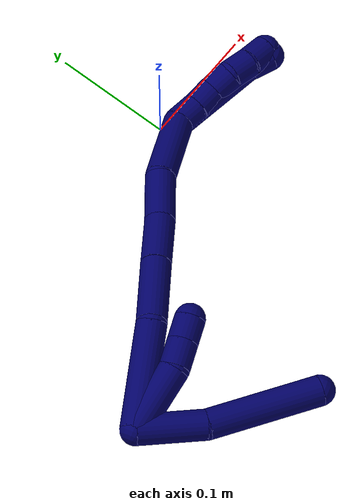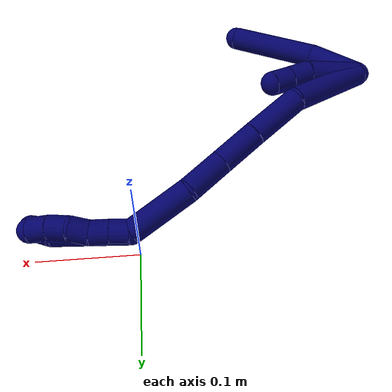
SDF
<sdf version="1.7">
 <world name="default">
  <model name="7">
   <static>0</static>
   <link name="7">
    <collision name="collision-cylinder-e_1_2_8">
     <pose>-0.011785 -0.021255 0.013803 0.994839 -0.435251 -0.238981</pose>
     <geometry><cylinder><radius>0.0125</radius><length>0.055899</length></cylinder></geometry>
     <surface>
      <friction><ode><mu>1.16</mu><mu2>1.16</mu2><slip1>0</slip1><slip2>0</slip2></ode></friction>
      <contact><ode><kp>1e+06</kp><kd>1</kd><max_vel>0</max_vel><min_depth>0.001</min_depth></ode></contact>
     </surface>
    </collision>
    <visual name="visual-cylinder-e_1_2_8">
     <pose>-0.011785 -0.021255 0.013803 0.994839 -0.435251 -0.238981</pose>
     <geometry><cylinder><radius>0.0125</radius><length>0.055899</length></cylinder></geometry>
     <material><ambient>0.003922 0 0.403922 1</ambient></material>
    </visual>
    <collision name="collision-cylinder-e_2_8_6">
     <pose>-0.037861 -0.074242 0.059269 0.786491 -0.30863 -0.128884</pose>
     <geometry><cylinder><radius>0.0125</radius><length>0.094101</length></cylinder></geometry>
     <surface>
      <friction><ode><mu>1.16</mu><mu2>1.16</mu2><slip1>0</slip1><slip2>0</slip2></ode></friction>
      <contact><ode><kp>1e+06</kp><kd>1</kd><max_vel>0</max_vel><min_depth>0.001</min_depth></ode></contact>
     </surface>
    </collision>
    <visual name="visual-cylinder-e_2_8_6">
     <pose>-0.037861 -0.074242 0.059269 0.786491 -0.30863 -0.128884</pose>
     <geometry><cylinder><radius>0.0125</radius><length>0.094101</length></cylinder></geometry>
     <material><ambient>0.003922 0 0.403922 1</ambient></material>
    </visual>
    <collision name="collision-cylinder-e_1_2_9">
     <pose>-0.002691 -0.00275 0.027999 0.097908 -0.095352 -0.004675</pose>
     <geometry><cylinder><radius>0.0125</radius><length>0.056524</length></cylinder></geometry>
     <surface>
      <friction><ode><mu>1.16</mu><mu2>1.16</mu2><slip1>0</slip1><slip2>0</slip2></ode></friction>
      <contact><ode><kp>1e+06</kp><kd>1</kd><max_vel>0</max_vel><min_depth>0.001</min_depth></ode></contact>
     </surface>
    </collision>
    <visual name="visual-cylinder-e_1_2_9">
     <pose>-0.002691 -0.00275 0.027999 0.097908 -0.095352 -0.004675</pose>
     <geometry><cylinder><radius>0.0125</radius><length>0.056524</length></cylinder></geometry>
     <material><ambient>0.003922 0 0.403922 1</ambient></material>
    </visual>
    <collision name="collision-cylinder-e_2_9_10">
     <pose>-0.003021 -0.005292 0.067208 -0.018527 0.207458 -0.001929</pose>
     <geometry><cylinder><radius>0.0125</radius><length>0.022917</length></cylinder></geometry>
     <surface>
      <friction><ode><mu>1.16</mu><mu2>1.16</mu2><slip1>0</slip1><slip2>0</slip2></ode></friction>
      <contact><ode><kp>1e+06</kp><kd>1</kd><max_vel>0</max_vel><min_depth>0.001</min_depth></ode></contact>
     </surface>
    </collision>
    <visual name="visual-cylinder-e_2_9_10">
     <pose>-0.003021 -0.005292 0.067208 -0.018527 0.207458 -0.001929</pose>
     <geometry><cylinder><radius>0.0125</radius><length>0.022917</length></cylinder></geometry>
     <material><ambient>0.003922 0 0.403922 1</ambient></material>
    </visual>
    <collision name="collision-cylinder-e_3_10_5">
     <pose>0.001179 -0.004737 0.088527 -0.034393 0.179936 -0.003103</pose>
     <geometry><cylinder><radius>0.0125</radius><length>0.020559</length></cylinder></geometry>
     <surface>
      <friction><ode><mu>1.16</mu><mu2>1.16</mu2><slip1>0</slip1><slip2>0</slip2></ode></friction>
      <contact><ode><kp>1e+06</kp><kd>1</kd><max_vel>0</max_vel><min_depth>0.001</min_depth></ode></contact>
     </surface>
    </collision>
    <visual name="visual-cylinder-e_3_10_5">
     <pose>0.001179 -0.004737 0.088527 -0.034393 0.179936 -0.003103</pose>
     <geometry><cylinder><radius>0.0125</radius><length>0.020559</length></cylinder></geometry>
     <material><ambient>0.003922 0 0.403922 1</ambient></material>
    </visual>
    <collision name="collision-cylinder-e_1_2_11">
     <pose>0.010281 0.007621 0.04185 -0.18013 0.237134 -0.021516</pose>
     <geometry><cylinder><radius>0.0125</radius><length>0.087527</length></cylinder></geometry>
     <surface>
      <friction><ode><mu>1.16</mu><mu2>1.16</mu2><slip1>0</slip1><slip2>0</slip2></ode></friction>
      <contact><ode><kp>1e+06</kp><kd>1</kd><max_vel>0</max_vel><min_depth>0.001</min_depth></ode></contact>
     </surface>
    </collision>
    <visual name="visual-cylinder-e_1_2_11">
     <pose>0.010281 0.007621 0.04185 -0.18013 0.237134 -0.021516</pose>
     <geometry><cylinder><radius>0.0125</radius><length>0.087527</length></cylinder></geometry>
     <material><ambient>0.003922 0 0.403922 1</ambient></material>
    </visual>
    <collision name="collision-cylinder-e_2_11_12">
     <pose>0.035567 0.015985 0.108279 -0.030206 0.547905 -0.008489</pose>
     <geometry><cylinder><radius>0.0125</radius><length>0.057611</length></cylinder></geometry>
     <surface>
      <friction><ode><mu>1.16</mu><mu2>1.16</mu2><slip1>0</slip1><slip2>0</slip2></ode></friction>
      <contact><ode><kp>1e+06</kp><kd>1</kd><max_vel>0</max_vel><min_depth>0.001</min_depth></ode></contact>
     </surface>
    </collision>
    <visual name="visual-cylinder-e_2_11_12">
     <pose>0.035567 0.015985 0.108279 -0.030206 0.547905 -0.008489</pose>
     <geometry><cylinder><radius>0.0125</radius><length>0.057611</length></cylinder></geometry>
     <material><ambient>0.003922 0 0.403922 1</ambient></material>
    </visual>
    <collision name="collision-cylinder-e_3_12_13">
     <pose>0.062631 0.016488 0.151437 0.012871 0.575655 0.00381</pose>
     <geometry><cylinder><radius>0.0125</radius><length>0.044305</length></cylinder></geometry>
     <surface>
      <friction><ode><mu>1.16</mu><mu2>1.16</mu2><slip1>0</slip1><slip2>0</slip2></ode></friction>
      <contact><ode><kp>1e+06</kp><kd>1</kd><max_vel>0</max_vel><min_depth>0.001</min_depth></ode></contact>
     </surface>
    </collision>
    <visual name="visual-cylinder-e_3_12_13">
     <pose>0.062631 0.016488 0.151437 0.012871 0.575655 0.00381</pose>
     <geometry><cylinder><radius>0.0125</radius><length>0.044305</length></cylinder></geometry>
     <material><ambient>0.003922 0 0.403922 1</ambient></material>
    </visual>
    <collision name="collision-cylinder-e_4_13_14">
     <pose>0.085684 0.018398 0.188403 -0.116337 0.535948 -0.031977</pose>
     <geometry><cylinder><radius>0.0125</radius><length>0.043057</length></cylinder></geometry>
     <surface>
      <friction><ode><mu>1.16</mu><mu2>1.16</mu2><slip1>0</slip1><slip2>0</slip2></ode></friction>
      <contact><ode><kp>1e+06</kp><kd>1</kd><max_vel>0</max_vel><min_depth>0.001</min_depth></ode></contact>
     </surface>
    </collision>
    <visual name="visual-cylinder-e_4_13_14">
     <pose>0.085684 0.018398 0.188403 -0.116337 0.535948 -0.031977</pose>
     <geometry><cylinder><radius>0.0125</radius><length>0.043057</length></cylinder></geometry>
     <material><ambient>0.003922 0 0.403922 1</ambient></material>
    </visual>
    <collision name="collision-cylinder-e_5_14_1">
     <pose>0.114092 0.013965 0.234939 0.22966 0.542134 0.064084</pose>
     <geometry><cylinder><radius>0.0125</radius><length>0.067499</length></cylinder></geometry>
     <surface>
      <friction><ode><mu>1.16</mu><mu2>1.16</mu2><slip1>0</slip1><slip2>0</slip2></ode></friction>
      <contact><ode><kp>1e+06</kp><kd>1</kd><max_vel>0</max_vel><min_depth>0.001</min_depth></ode></contact>
     </surface>
    </collision>
    <visual name="visual-cylinder-e_5_14_1">
     <pose>0.114092 0.013965 0.234939 0.22966 0.542134 0.064084</pose>
     <geometry><cylinder><radius>0.0125</radius><length>0.067499</length></cylinder></geometry>
     <material><ambient>0.003922 0 0.403922 1</ambient></material>
    </visual>
    <collision name="collision-cylinder-e_1_1_15">
     <pose>0.130614 -0.010015 0.298135 0.460811 -0.022773 -0.005342</pose>
     <geometry><cylinder><radius>0.0125</radius><length>0.078272</length></cylinder></geometry>
     <surface>
      <friction><ode><mu>1.16</mu><mu2>1.16</mu2><slip1>0</slip1><slip2>0</slip2></ode></friction>
      <contact><ode><kp>1e+06</kp><kd>1</kd><max_vel>0</max_vel><min_depth>0.001</min_depth></ode></contact>
     </surface>
    </collision>
    <visual name="visual-cylinder-e_1_1_15">
     <pose>0.130614 -0.010015 0.298135 0.460811 -0.022773 -0.005342</pose>
     <geometry><cylinder><radius>0.0125</radius><length>0.078272</length></cylinder></geometry>
     <material><ambient>0.003922 0 0.403922 1</ambient></material>
    </visual>
    <collision name="collision-cylinder-e_2_15_4">
     <pose>0.126626 -0.033288 0.341778 0.599447 -0.289048 -0.089892</pose>
     <geometry><cylinder><radius>0.0125</radius><length>0.021728</length></cylinder></geometry>
     <surface>
      <friction><ode><mu>1.16</mu><mu2>1.16</mu2><slip1>0</slip1><slip2>0</slip2></ode></friction>
      <contact><ode><kp>1e+06</kp><kd>1</kd><max_vel>0</max_vel><min_depth>0.001</min_depth></ode></contact>
     </surface>
    </collision>
    <visual name="visual-cylinder-e_2_15_4">
     <pose>0.126626 -0.033288 0.341778 0.599447 -0.289048 -0.089892</pose>
     <geometry><cylinder><radius>0.0125</radius><length>0.021728</length></cylinder></geometry>
     <material><ambient>0.003922 0 0.403922 1</ambient></material>
    </visual>
    <collision name="collision-cylinder-e_1_1_16">
     <pose>0.130884 0.003294 0.272195 0.422138 -0.062121 -0.013314</pose>
     <geometry><cylinder><radius>0.0125</radius><length>0.02</length></cylinder></geometry>
     <surface>
      <friction><ode><mu>1.16</mu><mu2>1.16</mu2><slip1>0</slip1><slip2>0</slip2></ode></friction>
      <contact><ode><kp>1e+06</kp><kd>1</kd><max_vel>0</max_vel><min_depth>0.001</min_depth></ode></contact>
     </surface>
    </collision>
    <visual name="visual-cylinder-e_1_1_16">
     <pose>0.130884 0.003294 0.272195 0.422138 -0.062121 -0.013314</pose>
     <geometry><cylinder><radius>0.0125</radius><length>0.02</length></cylinder></geometry>
     <material><ambient>0.003922 0 0.403922 1</ambient></material>
    </visual>
    <collision name="collision-cylinder-e_2_16_17">
     <pose>0.129901 -0.004185 0.2907 0.34616 -0.036305 -0.006348</pose>
     <geometry><cylinder><radius>0.0125</radius><length>0.02</length></cylinder></geometry>
     <surface>
      <friction><ode><mu>1.16</mu><mu2>1.16</mu2><slip1>0</slip1><slip2>0</slip2></ode></friction>
      <contact><ode><kp>1e+06</kp><kd>1</kd><max_vel>0</max_vel><min_depth>0.001</min_depth></ode></contact>
     </surface>
    </collision>
    <visual name="visual-cylinder-e_2_16_17">
     <pose>0.129901 -0.004185 0.2907 0.34616 -0.036305 -0.006348</pose>
     <geometry><cylinder><radius>0.0125</radius><length>0.02</length></cylinder></geometry>
     <material><ambient>0.003922 0 0.403922 1</ambient></material>
    </visual>
    <collision name="collision-cylinder-e_3_17_18">
     <pose>0.12654 -0.010374 0.309221 0.297677 -0.30447 -0.046002</pose>
     <geometry><cylinder><radius>0.0125</radius><length>0.02</length></cylinder></geometry>
     <surface>
      <friction><ode><mu>1.16</mu><mu2>1.16</mu2><slip1>0</slip1><slip2>0</slip2></ode></friction>
      <contact><ode><kp>1e+06</kp><kd>1</kd><max_vel>0</max_vel><min_depth>0.001</min_depth></ode></contact>
     </surface>
    </collision>
    <visual name="visual-cylinder-e_3_17_18">
     <pose>0.12654 -0.010374 0.309221 0.297677 -0.30447 -0.046002</pose>
     <geometry><cylinder><radius>0.0125</radius><length>0.02</length></cylinder></geometry>
     <material><ambient>0.003922 0 0.403922 1</ambient></material>
    </visual>
    <collision name="collision-cylinder-e_4_18_19">
     <pose>0.122936 -0.0183 0.326906 0.539515 -0.06067 -0.01678</pose>
     <geometry><cylinder><radius>0.0125</radius><length>0.02</length></cylinder></geometry>
     <surface>
      <friction><ode><mu>1.16</mu><mu2>1.16</mu2><slip1>0</slip1><slip2>0</slip2></ode></friction>
      <contact><ode><kp>1e+06</kp><kd>1</kd><max_vel>0</max_vel><min_depth>0.001</min_depth></ode></contact>
     </surface>
    </collision>
    <visual name="visual-cylinder-e_4_18_19">
     <pose>0.122936 -0.0183 0.326906 0.539515 -0.06067 -0.01678</pose>
     <geometry><cylinder><radius>0.0125</radius><length>0.02</length></cylinder></geometry>
     <material><ambient>0.003922 0 0.403922 1</ambient></material>
    </visual>
    <collision name="collision-cylinder-e_5_19_3">
     <pose>0.123355 -0.028402 0.344084 0.523648 0.102782 0.027566</pose>
     <geometry><cylinder><radius>0.0125</radius><length>0.02</length></cylinder></geometry>
     <surface>
      <friction><ode><mu>1.16</mu><mu2>1.16</mu2><slip1>0</slip1><slip2>0</slip2></ode></friction>
      <contact><ode><kp>1e+06</kp><kd>1</kd><max_vel>0</max_vel><min_depth>0.001</min_depth></ode></contact>
     </surface>
    </collision>
    <visual name="visual-cylinder-e_5_19_3">
     <pose>0.123355 -0.028402 0.344084 0.523648 0.102782 0.027566</pose>
     <geometry><cylinder><radius>0.0125</radius><length>0.02</length></cylinder></geometry>
     <material><ambient>0.003922 0 0.403922 1</ambient></material>
    </visual>
    <collision name="collision-sphere-3">
     <pose>0.124381 -0.033376 0.352698 0 -0 0</pose>
     <geometry><sphere><radius>0.0125</radius></sphere></geometry>
     <surface>
      <friction><ode><mu>1.16</mu><mu2>1.16</mu2><slip1>0</slip1><slip2>0</slip2></ode></friction>
      <contact><ode><kp>1e+06</kp><kd>1</kd><max_vel>0</max_vel><min_depth>0.001</min_depth></ode></contact>
     </surface>
    </collision>
    <visual name="visual-sphere-3">
     <pose>0.124381 -0.033376 0.352698 0 -0 0</pose>
     <geometry><sphere><radius>0.0125</radius></sphere></geometry>
     <material><ambient>0.003922 0 0.403922 1</ambient></material>
    </visual>
    <collision name="collision-sphere-19">
     <pose>0.122329 -0.023428 0.335469 0 -0 0</pose>
     <geometry><sphere><radius>0.0125</radius></sphere></geometry>
     <surface>
      <friction><ode><mu>1.16</mu><mu2>1.16</mu2><slip1>0</slip1><slip2>0</slip2></ode></friction>
      <contact><ode><kp>1e+06</kp><kd>1</kd><max_vel>0</max_vel><min_depth>0.001</min_depth></ode></contact>
     </surface>
    </collision>
    <visual name="visual-sphere-19">
     <pose>0.122329 -0.023428 0.335469 0 -0 0</pose>
     <geometry><sphere><radius>0.0125</radius></sphere></geometry>
     <material><ambient>0.003922 0 0.403922 1</ambient></material>
    </visual>
    <collision name="collision-sphere-5">
     <pose>0.003018 -0.004389 0.098635 0 -0 0</pose>
     <geometry><sphere><radius>0.0125</radius></sphere></geometry>
     <surface>
      <friction><ode><mu>1.16</mu><mu2>1.16</mu2><slip1>0</slip1><slip2>0</slip2></ode></friction>
      <contact><ode><kp>1e+06</kp><kd>1</kd><max_vel>0</max_vel><min_depth>0.001</min_depth></ode></contact>
     </surface>
    </collision>
    <visual name="visual-sphere-5">
     <pose>0.003018 -0.004389 0.098635 0 -0 0</pose>
     <geometry><sphere><radius>0.0125</radius></sphere></geometry>
     <material><ambient>0.003922 0 0.403922 1</ambient></material>
    </visual>
    <collision name="collision-sphere-10">
     <pose>-0.000661 -0.005085 0.078419 0 -0 0</pose>
     <geometry><sphere><radius>0.0125</radius></sphere></geometry>
     <surface>
      <friction><ode><mu>1.16</mu><mu2>1.16</mu2><slip1>0</slip1><slip2>0</slip2></ode></friction>
      <contact><ode><kp>1e+06</kp><kd>1</kd><max_vel>0</max_vel><min_depth>0.001</min_depth></ode></contact>
     </surface>
    </collision>
    <visual name="visual-sphere-10">
     <pose>-0.000661 -0.005085 0.078419 0 -0 0</pose>
     <geometry><sphere><radius>0.0125</radius></sphere></geometry>
     <material><ambient>0.003922 0 0.403922 1</ambient></material>
    </visual>
    <collision name="collision-sphere-6">
     <pose>-0.052153 -0.105975 0.090932 0 -0 0</pose>
     <geometry><sphere><radius>0.0125</radius></sphere></geometry>
     <surface>
      <friction><ode><mu>1.16</mu><mu2>1.16</mu2><slip1>0</slip1><slip2>0</slip2></ode></friction>
      <contact><ode><kp>1e+06</kp><kd>1</kd><max_vel>0</max_vel><min_depth>0.001</min_depth></ode></contact>
     </surface>
    </collision>
    <visual name="visual-sphere-6">
     <pose>-0.052153 -0.105975 0.090932 0 -0 0</pose>
     <geometry><sphere><radius>0.0125</radius></sphere></geometry>
     <material><ambient>0.003922 0 0.403922 1</ambient></material>
    </visual>
    <collision name="collision-sphere-9">
     <pose>-0.005381 -0.0055 0.055998 0 -0 0</pose>
     <geometry><sphere><radius>0.0125</radius></sphere></geometry>
     <surface>
      <friction><ode><mu>1.16</mu><mu2>1.16</mu2><slip1>0</slip1><slip2>0</slip2></ode></friction>
      <contact><ode><kp>1e+06</kp><kd>1</kd><max_vel>0</max_vel><min_depth>0.001</min_depth></ode></contact>
     </surface>
    </collision>
    <visual name="visual-sphere-9">
     <pose>-0.005381 -0.0055 0.055998 0 -0 0</pose>
     <geometry><sphere><radius>0.0125</radius></sphere></geometry>
     <material><ambient>0.003922 0 0.403922 1</ambient></material>
    </visual>
    <collision name="collision-sphere-2">
     <geometry><sphere><radius>0.0125</radius></sphere></geometry>
     <surface>
      <friction><ode><mu>1.16</mu><mu2>1.16</mu2><slip1>0</slip1><slip2>0</slip2></ode></friction>
      <contact><ode><kp>1e+06</kp><kd>1</kd><max_vel>0</max_vel><min_depth>0.001</min_depth></ode></contact>
     </surface>
    </collision>
    <visual name="visual-sphere-2">
     <geometry><sphere><radius>0.0125</radius></sphere></geometry>
     <material><ambient>0.003922 0 0.403922 1</ambient></material>
    </visual>
    <collision name="collision-sphere-8">
     <pose>-0.023569 -0.04251 0.027606 0 -0 0</pose>
     <geometry><sphere><radius>0.0125</radius></sphere></geometry>
     <surface>
      <friction><ode><mu>1.16</mu><mu2>1.16</mu2><slip1>0</slip1><slip2>0</slip2></ode></friction>
      <contact><ode><kp>1e+06</kp><kd>1</kd><max_vel>0</max_vel><min_depth>0.001</min_depth></ode></contact>
     </surface>
    </collision>
    <visual name="visual-sphere-8">
     <pose>-0.023569 -0.04251 0.027606 0 -0 0</pose>
     <geometry><sphere><radius>0.0125</radius></sphere></geometry>
     <material><ambient>0.003922 0 0.403922 1</ambient></material>
    </visual>
    <collision name="collision-sphere-11">
     <pose>0.020562 0.015242 0.083701 0 -0 0</pose>
     <geometry><sphere><radius>0.0125</radius></sphere></geometry>
     <surface>
      <friction><ode><mu>1.16</mu><mu2>1.16</mu2><slip1>0</slip1><slip2>0</slip2></ode></friction>
      <contact><ode><kp>1e+06</kp><kd>1</kd><max_vel>0</max_vel><min_depth>0.001</min_depth></ode></contact>
     </surface>
    </collision>
    <visual name="visual-sphere-11">
     <pose>0.020562 0.015242 0.083701 0 -0 0</pose>
     <geometry><sphere><radius>0.0125</radius></sphere></geometry>
     <material><ambient>0.003922 0 0.403922 1</ambient></material>
    </visual>
    <collision name="collision-sphere-12">
     <pose>0.050571 0.016728 0.132857 0 -0 0</pose>
     <geometry><sphere><radius>0.0125</radius></sphere></geometry>
     <surface>
      <friction><ode><mu>1.16</mu><mu2>1.16</mu2><slip1>0</slip1><slip2>0</slip2></ode></friction>
      <contact><ode><kp>1e+06</kp><kd>1</kd><max_vel>0</max_vel><min_depth>0.001</min_depth></ode></contact>
     </surface>
    </collision>
    <visual name="visual-sphere-12">
     <pose>0.050571 0.016728 0.132857 0 -0 0</pose>
     <geometry><sphere><radius>0.0125</radius></sphere></geometry>
     <material><ambient>0.003922 0 0.403922 1</ambient></material>
    </visual>
    <collision name="collision-sphere-13">
     <pose>0.07469 0.016249 0.170018 0 -0 0</pose>
     <geometry><sphere><radius>0.0125</radius></sphere></geometry>
     <surface>
      <friction><ode><mu>1.16</mu><mu2>1.16</mu2><slip1>0</slip1><slip2>0</slip2></ode></friction>
      <contact><ode><kp>1e+06</kp><kd>1</kd><max_vel>0</max_vel><min_depth>0.001</min_depth></ode></contact>
     </surface>
    </collision>
    <visual name="visual-sphere-13">
     <pose>0.07469 0.016249 0.170018 0 -0 0</pose>
     <geometry><sphere><radius>0.0125</radius></sphere></geometry>
     <material><ambient>0.003922 0 0.403922 1</ambient></material>
    </visual>
    <collision name="collision-sphere-14">
     <pose>0.096678 0.020546 0.206788 0 -0 0</pose>
     <geometry><sphere><radius>0.0125</radius></sphere></geometry>
     <surface>
      <friction><ode><mu>1.16</mu><mu2>1.16</mu2><slip1>0</slip1><slip2>0</slip2></ode></friction>
      <contact><ode><kp>1e+06</kp><kd>1</kd><max_vel>0</max_vel><min_depth>0.001</min_depth></ode></contact>
     </surface>
    </collision>
    <visual name="visual-sphere-14">
     <pose>0.096678 0.020546 0.206788 0 -0 0</pose>
     <geometry><sphere><radius>0.0125</radius></sphere></geometry>
     <material><ambient>0.003922 0 0.403922 1</ambient></material>
    </visual>
    <collision name="collision-sphere-1">
     <pose>0.131505 0.007384 0.26309 0 -0 0</pose>
     <geometry><sphere><radius>0.0125</radius></sphere></geometry>
     <surface>
      <friction><ode><mu>1.16</mu><mu2>1.16</mu2><slip1>0</slip1><slip2>0</slip2></ode></friction>
      <contact><ode><kp>1e+06</kp><kd>1</kd><max_vel>0</max_vel><min_depth>0.001</min_depth></ode></contact>
     </surface>
    </collision>
    <visual name="visual-sphere-1">
     <pose>0.131505 0.007384 0.26309 0 -0 0</pose>
     <geometry><sphere><radius>0.0125</radius></sphere></geometry>
     <material><ambient>0.003922 0 0.403922 1</ambient></material>
    </visual>
    <collision name="collision-sphere-18">
     <pose>0.123542 -0.013172 0.318342 0 -0 0</pose>
     <geometry><sphere><radius>0.0125</radius></sphere></geometry>
     <surface>
      <friction><ode><mu>1.16</mu><mu2>1.16</mu2><slip1>0</slip1><slip2>0</slip2></ode></friction>
      <contact><ode><kp>1e+06</kp><kd>1</kd><max_vel>0</max_vel><min_depth>0.001</min_depth></ode></contact>
     </surface>
    </collision>
    <visual name="visual-sphere-18">
     <pose>0.123542 -0.013172 0.318342 0 -0 0</pose>
     <geometry><sphere><radius>0.0125</radius></sphere></geometry>
     <material><ambient>0.003922 0 0.403922 1</ambient></material>
    </visual>
    <collision name="collision-sphere-15">
     <pose>0.129723 -0.027413 0.33318 0 -0 0</pose>
     <geometry><sphere><radius>0.0125</radius></sphere></geometry>
     <surface>
      <friction><ode><mu>1.16</mu><mu2>1.16</mu2><slip1>0</slip1><slip2>0</slip2></ode></friction>
      <contact><ode><kp>1e+06</kp><kd>1</kd><max_vel>0</max_vel><min_depth>0.001</min_depth></ode></contact>
     </surface>
    </collision>
    <visual name="visual-sphere-15">
     <pose>0.129723 -0.027413 0.33318 0 -0 0</pose>
     <geometry><sphere><radius>0.0125</radius></sphere></geometry>
     <material><ambient>0.003922 0 0.403922 1</ambient></material>
    </visual>
    <collision name="collision-sphere-4">
     <pose>0.12353 -0.039163 0.350375 0 -0 0</pose>
     <geometry><sphere><radius>0.0125</radius></sphere></geometry>
     <surface>
      <friction><ode><mu>1.16</mu><mu2>1.16</mu2><slip1>0</slip1><slip2>0</slip2></ode></friction>
      <contact><ode><kp>1e+06</kp><kd>1</kd><max_vel>0</max_vel><min_depth>0.001</min_depth></ode></contact>
     </surface>
    </collision>
    <visual name="visual-sphere-4">
     <pose>0.12353 -0.039163 0.350375 0 -0 0</pose>
     <geometry><sphere><radius>0.0125</radius></sphere></geometry>
     <material><ambient>0.003922 0 0.403922 1</ambient></material>
    </visual>
    <collision name="collision-sphere-16">
     <pose>0.130264 -0.000795 0.2813 0 -0 0</pose>
     <geometry><sphere><radius>0.0125</radius></sphere></geometry>
     <surface>
      <friction><ode><mu>1.16</mu><mu2>1.16</mu2><slip1>0</slip1><slip2>0</slip2></ode></friction>
      <contact><ode><kp>1e+06</kp><kd>1</kd><max_vel>0</max_vel><min_depth>0.001</min_depth></ode></contact>
     </surface>
    </collision>
    <visual name="visual-sphere-16">
     <pose>0.130264 -0.000795 0.2813 0 -0 0</pose>
     <geometry><sphere><radius>0.0125</radius></sphere></geometry>
     <material><ambient>0.003922 0 0.403922 1</ambient></material>
    </visual>
    <collision name="collision-sphere-17">
     <pose>0.129538 -0.007576 0.300101 0 -0 0</pose>
     <geometry><sphere><radius>0.0125</radius></sphere></geometry>
     <surface>
      <friction><ode><mu>1.16</mu><mu2>1.16</mu2><slip1>0</slip1><slip2>0</slip2></ode></friction>
      <contact><ode><kp>1e+06</kp><kd>1</kd><max_vel>0</max_vel><min_depth>0.001</min_depth></ode></contact>
     </surface>
    </collision>
    <visual name="visual-sphere-17">
     <pose>0.129538 -0.007576 0.300101 0 -0 0</pose>
     <geometry><sphere><radius>0.0125</radius></sphere></geometry>
     <material><ambient>0.003922 0 0.403922 1</ambient></material>
    </visual>
    <inertial>
     <pose>0.051124 -0.009549 0.151329 0 -0 0</pose>
     <mass>0.75</mass>
     <inertia>
      <ixx>0.00026</ixx>
      <ixy>0</ixy>
      <ixz>0</ixz>
      <iyy>0.000224</iyy>
      <iyz>0</iyz>
      <izz>0.000115</izz>
     </inertia>
    </inertial>
   </link>
   <pose>-0.239716 -0.165688 0.06938 1.30732 0.851721 1.60578</pose>
  </model>
 </world>
</sdf>
